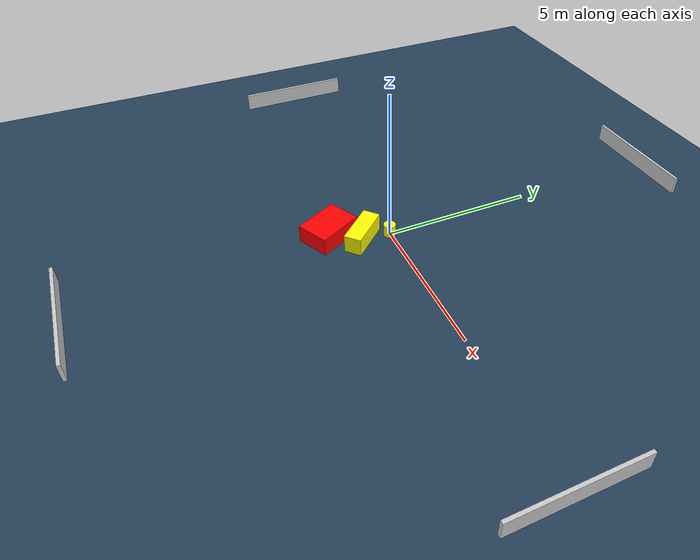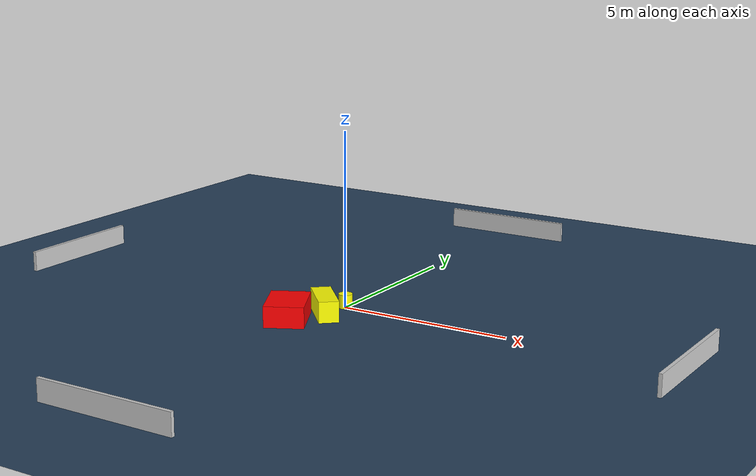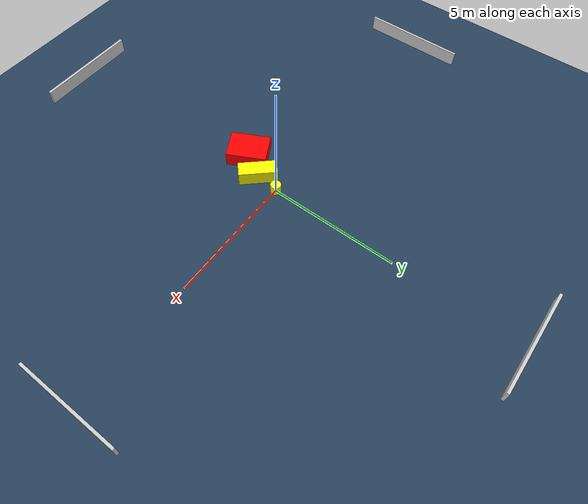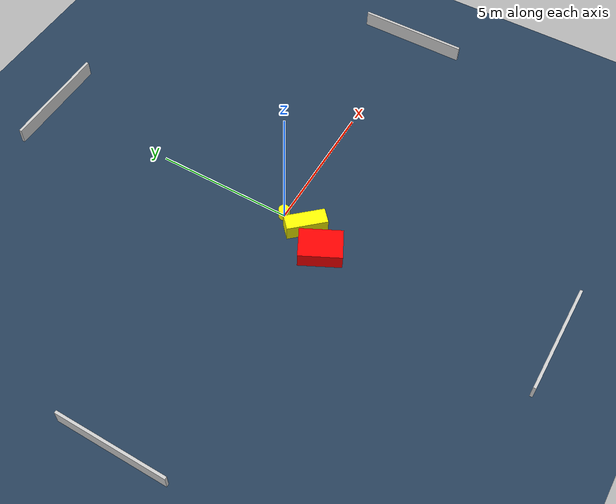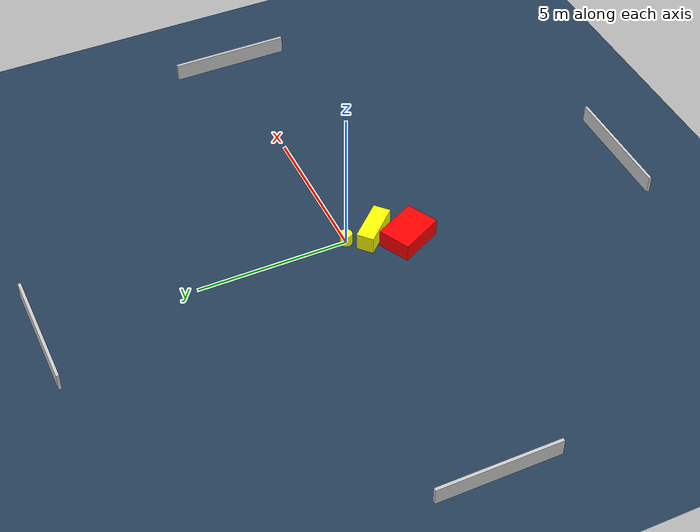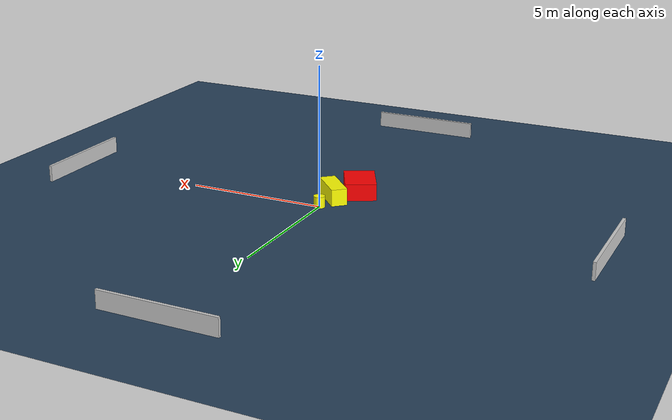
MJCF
<?xml version="1.0" ?>
<mujoco model="generated_environment">
  <option timestep="0.01" integrator="RK4" cone="elliptic"/>
  <default>
    <geom density="1"/>
  </default>
  <asset>
    <texture builtin="gradient" height="3072" name="skybox" rgb1="0.3 0.5 0.7" rgb2="0 0 0" type="skybox" width="512"/>
    <texture builtin="checker" height="300" name="groundplane" rgb1="0.2 0.3 0.4" rgb2="0.1 0.2 0.3" type="2d" width="300"/>
    <material name="groundplane" reflectance="0.2" texrepeat="5 5" texture="groundplane"/>
  </asset>
  <worldbody>
    <light dir="0 0 -1" directional="true" pos="0 0 1.5"/>
    <geom condim="3" friction="0.5 0.005 0.001" material="groundplane" name="floor" pos="0 0 0" size="0 0 0.05" type="plane"/>
    <body name="walls">
      <geom name="wall_1" condim="4" pos="-10.0 0.0 0.3" rgba="0.800000011920929 0.800000011920929 0.800000011920929 1.0" size="0.05 2.0 0.3" type="box"/>
      <geom name="wall_2" condim="4" pos="10.0 0.0 0.3" rgba="0.800000011920929 0.800000011920929 0.800000011920929 1.0" size="0.05 2.0 0.3" type="box"/>
      <geom name="wall_3" condim="4" pos="0.0 -10.0 0.3" rgba="0.800000011920929 0.800000011920929 0.800000011920929 1.0" size="2.0 0.05 0.3" type="box"/>
      <geom name="wall_4" condim="4" pos="0.0 10.0 0.3" rgba="0.800000011920929 0.800000011920929 0.800000011920929 1.0" size="2.0 0.05 0.3" type="box"/>
    </body>
    <body name="robot">
      <joint name="joint_x" type="slide" pos="0 0 0" axis="1 0 0"/>
      <joint name="joint_y" type="slide" pos="0 0 0" axis="0 1 0"/>
      <geom name="robot" type="cylinder" pos="0.0 0.0 0.2" size="0.2 0.2 0.0" mass="5.0" friction="1.0 0.005 0.0001" condim="4" rgba="1.0 1.0 0.0 1.0"/>
    </body>
    <body name="obstacle_1_movable">
      <geom name="obstacle_1_movable" condim="4" pos="-0.09361337119300284 -0.9131863628589171 0.3" euler="0 0 312.64625596572205" friction="0.0 0.005 0.001" rgba="1.0 1.0 0.0 1.0" size="0.7264332942458867 0.28395720904236565 0.3" type="box" mass="0.1"/>
      <joint type="free"/>
    </body>
    <body name="obstacle_2_static">
      <geom name="obstacle_2_static" condim="4" pos="-0.7014014745288819 -1.8352991503823328 0.3" euler="0 0 116.96882260092731" friction="0.0 0.005 0.001" rgba="1.0 0.0 0.0 1.0" size="0.7607525265303834 0.5547063675235694 0.3" type="box"/>
    </body>
  </worldbody>
  <actuator>
    <motor name="actuator_x" joint="joint_x" gear="1" ctrlrange="-1 1"/>
    <motor name="actuator_y" joint="joint_y" gear="1" ctrlrange="-1 1"/>
  </actuator>
</mujoco>
